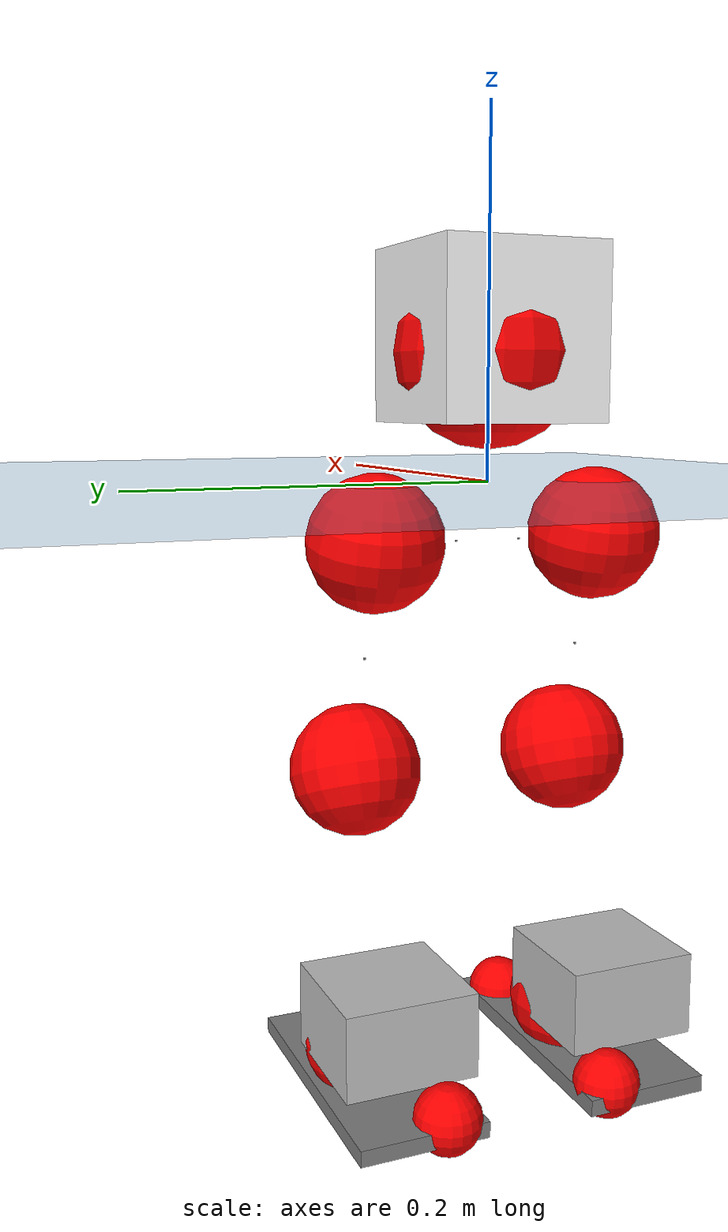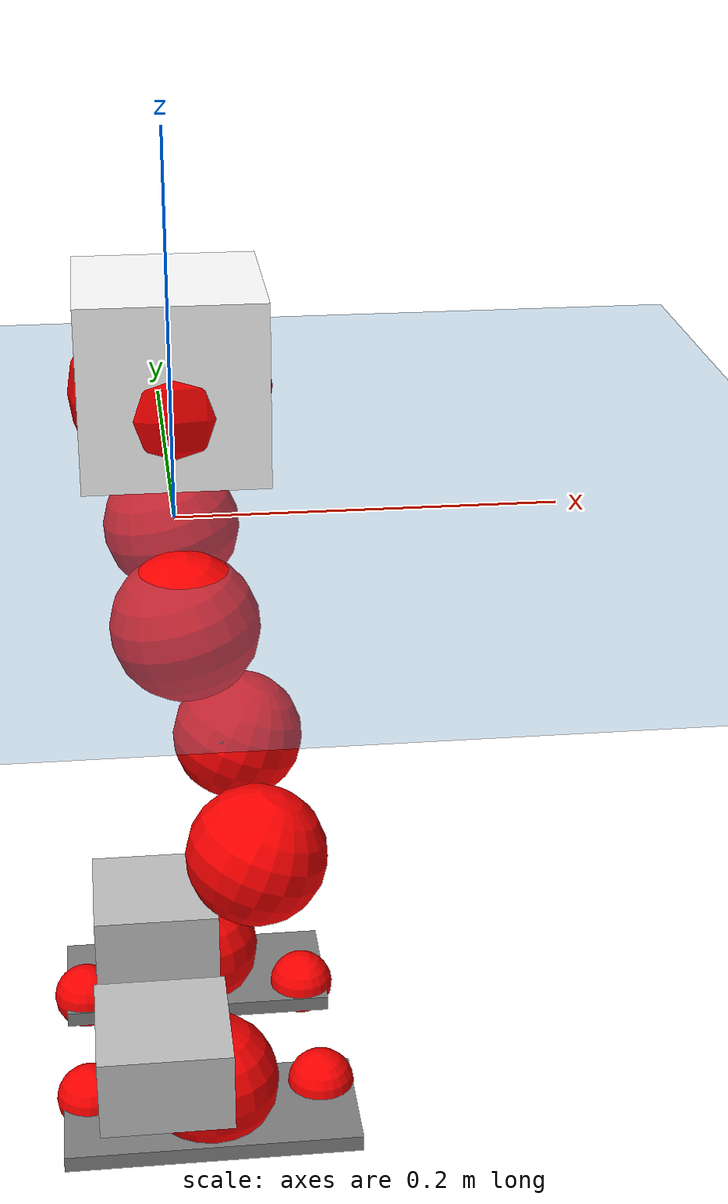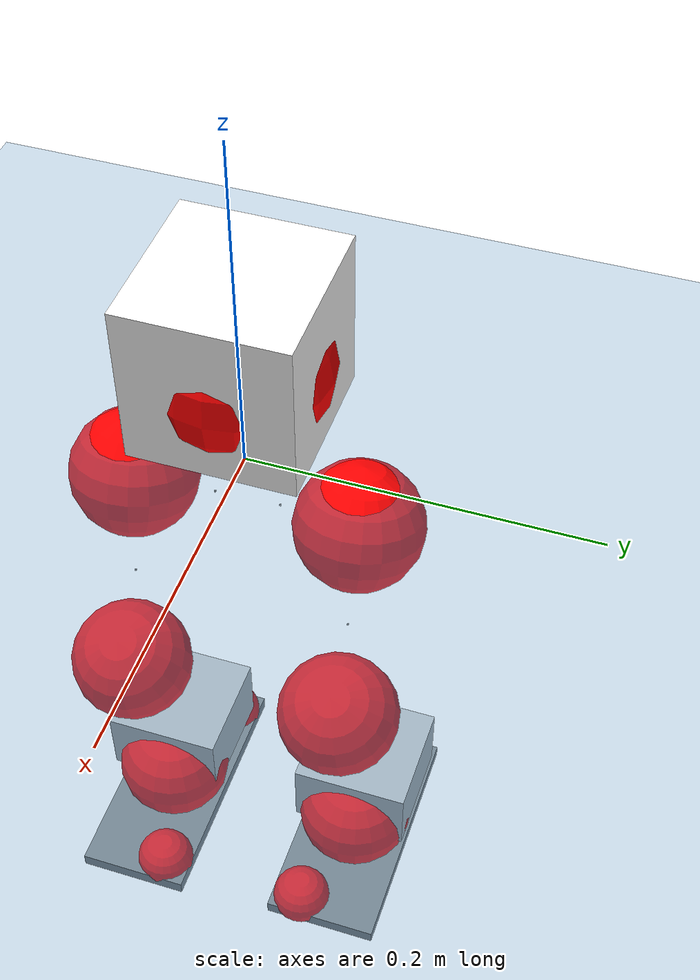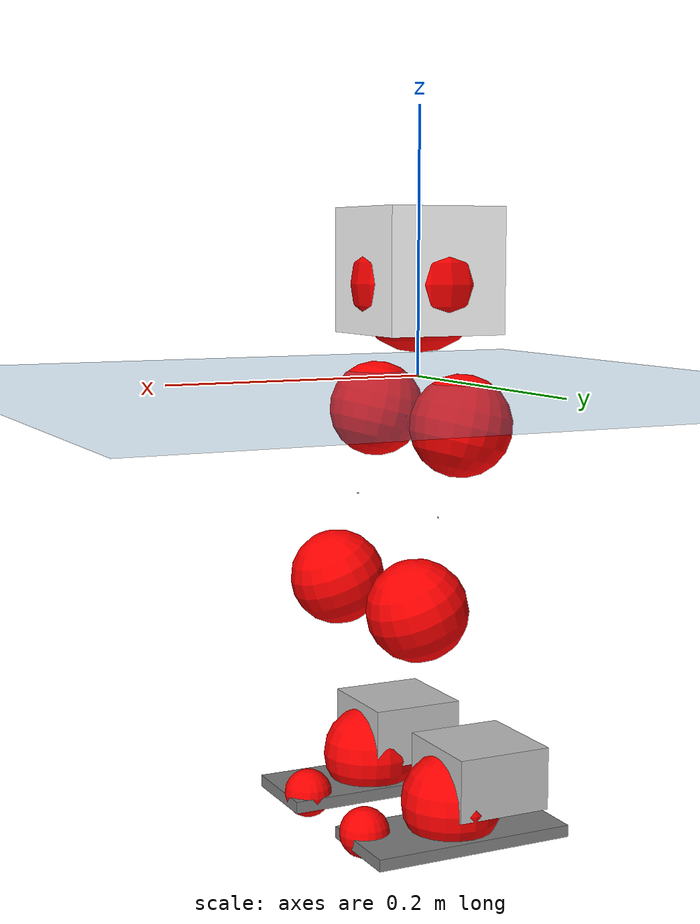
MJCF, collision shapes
<mujoco model="pi_12dof_release_v1">
  <compiler angle="radian" assetdir="assets" balanceinertia="true" inertiafromgeom="false"/>

  <option timestep="0.005" density="1.2" viscosity="2e-05"/>

  <size nkey="1"/>

  <visual>
    <quality shadowsize="8192"/>
    <map shadowclip="0.5"/>
  </visual>

  <default>
    <default class="/">
      <joint armature="0.01" damping="0.01" frictionloss="0.01"/>
      <geom contype="0" conaffinity="0" group="1" solref="-1000 -80"/>
      <site size="0.01 0.005 0.005" group="5"/>
      <general forcelimited="true" biastype="affine" gainprm="20" biasprm="0 -20 -0.5"/>
      <default class="foot">
        <geom size="0.0845 0.036 0.005" type="box" condim="6" group="4" priority="1" friction="0.9 0.2 0.2" solimp="0.015 1 0.005"/>
      </default>
      <default class="reward_collision_sphere">
        <geom group="5" rgba="1 0 0 1"/>
      </default>
    </default>
  </default>

  <asset>
    <texture type="skybox" colorspace="auto" name="//unnamed_texture_0" builtin="gradient" rgb1="0.95 0.95 0.95" rgb2="0.95 0.95 0.95" width="100" height="600"/>
    <texture type="2d" colorspace="auto" name="texplane" builtin="checker" rgb1="0.345 0.575 0.748" rgb2="0.345 0.575 0.748" markrgb="1 1 1" width="512" height="512"/>
    <material name="MatPlane" class="/" texture="texplane" texuniform="true" texrepeat="2 2" specular="0.9"/>
    <mesh name="baselink_1" class="/" file="baselink_1.STL"/>
    <mesh name="r_hip_pitch_link" class="/" file="r_hip_pitch_link.STL"/>
    <mesh name="r_hip_roll_link" class="/" file="r_hip_roll_link.STL"/>
    <mesh name="r_thigh_link" class="/" file="r_thigh_link.STL"/>
    <mesh name="r_calf_link" class="/" file="r_calf_link.STL"/>
    <mesh name="r_ankle_pitch_link" class="/" file="r_ankle_pitch_link.STL"/>
    <mesh name="r_ankle_roll_link" class="/" file="r_ankle_roll_link.STL"/>
    <mesh name="l_hip_pitch_link" class="/" file="l_hip_pitch_link.STL"/>
    <mesh name="l_hip_roll_link" class="/" file="l_hip_roll_link.STL"/>
    <mesh name="l_thigh_link" class="/" file="l_thigh_link.STL"/>
    <mesh name="l_calf_link" class="/" file="l_calf_link.STL"/>
    <mesh name="l_ankle_pitch_link" class="/" file="l_ankle_pitch_link.STL"/>
    <mesh name="l_ankle_roll_link" class="/" file="l_ankle_roll_link.STL"/>
  </asset>

  <worldbody>
    <geom name="floor" class="/" size="100 100 0.125" type="plane" group="0" material="MatPlane"/>
    <light name="toplight_shadow" class="/" pos="0 0 5" dir="0.0990148 0.0990148 -0.990148" type="directional" ambient="0.04 0.04 0.04" diffuse="0.55 0.55 0.55" specular="0.12 0.12 0.12"/>
    <light name="toplight_fill" class="/" pos="0 0 5" dir="0.0990148 0.0990148 -0.990148" type="directional" castshadow="false" ambient="0.04 0.04 0.04" diffuse="0.3 0.3 0.3" specular="0.08 0.08 0.08"/>
    <body name="trunk" pos="0.000155795 0.000155115 0.000520647" quat="1 -0.00015532 -8.56875e-05 -2.74998e-05">
      <inertial pos="0.0022838 -0.00154571 0.0385933" quat="0.694251 0.0101415 0.0116484 0.719568" mass="1.74884" diaginertia="0.00807423 0.00433386 0.00377527"/>
      <joint name="//unnamed_joint_0" type="free"/>
      <geom name="//unnamed_geom_1" class="/" type="mesh" density="0" rgba="1 1 1 1" mesh="baselink_1"/>
      <geom name="//unnamed_geom_2" class="/" size="0.0467637 0.0467637 0.0467637" pos="0 0 0.0783936" type="box" rgba="1 1 1 1"/>
      <geom name="//unnamed_geom_3" class="reward_collision_sphere" size="0.0514401" pos="0 0 0.0685944"/>
      <site name="imu" class="/" pos="-0.0070758 -0.00249836 0.00280135" size="0.00935274"/>
      <camera name="track" class="/" pos="0 -1.7254 0" quat="0.707107 0.707107 0 0" mode="trackcom"/>
      <camera name="ego_camera" class="/" pos="0.0722404 0 0.176386" quat="-0.5 -0.5 0.5 0.5"/>
      <body name="r_hip_pitch_link" pos="0.000285531 -0.0194262 -0.0321872" quat="0.992157 4.47324e-05 -0.124994 8.32566e-05">
        <inertial pos="0.00176836 -0.0473924 0.000264163" quat="-0.0190144 0.705922 -0.0240339 0.707626" mass="0.300913" diaginertia="8.92784e-05 4.69925e-05 7.4966e-05"/>
        <joint name="r_hip_pitch_joint" class="/" pos="0 0 0" axis="-0.00285027 -0.999996 -0.000519446" stiffness="0.00247247" range="-1.75073 1.22995" armature="0.00969135" damping="0.00170635" frictionloss="0.00960688"/>
        <geom name="//unnamed_geom_4" class="/" type="mesh" density="0" rgba="0.75294 0.75294 0.75294 1" mesh="r_hip_pitch_link"/>
        <geom name="//unnamed_geom_5" class="/" size="0.000467637 0.000467637 0.000467637" type="box" rgba="0.75294 0.75294 0.75294 1"/>
        <body name="r_hip_roll_link" pos="0.00112291 -0.048176 0.00110531" quat="1 -4.27665e-05 7.40292e-05 6.50727e-05">
          <inertial pos="-0.00216781 -0.000171763 -0.0597759" quat="0.706162 -0.0789325 -0.082198 0.698819" mass="0.314132" diaginertia="0.000273893 0.000132782 0.000115163"/>
          <joint name="r_hip_roll_joint" class="/" pos="0 0 0" axis="-0.999977 -0.00660147 -0.00181147" range="-0.133965 0.487044" armature="0.00977628" damping="0.00756073" frictionloss="0.00919952"/>
          <geom name="//unnamed_geom_6" class="/" type="mesh" density="0" rgba="0.75294 0.75294 0.75294 1" mesh="r_hip_roll_link"/>
          <geom name="//unnamed_geom_7" class="/" size="0.000467637 0.000467637 0.000467637" type="box" rgba="0.75294 0.75294 0.75294 1"/>
          <geom name="//unnamed_geom_8" class="reward_collision_sphere" size="0.037411"/>
          <body name="r_thigh_link" pos="-0.000535729 0.000652659 -0.0686812" quat="1 0.000102797 9.20518e-05 5.73238e-05">
            <inertial pos="9.79764e-05 0.000977419 -0.0466615" quat="0.737335 0.675527 0.000134676 -0.000100085" mass="0.0936654" diaginertia="0.000104846 4.52207e-05 5.2748e-05"/>
            <joint name="r_thigh_joint" class="/" pos="0 0 0" axis="0.0011987 -0.000220569 -0.999999" range="-0.313701 0.589505" armature="0.00944759" damping="0.00413181" frictionloss="0.00959499"/>
            <geom name="//unnamed_geom_9" class="/" type="mesh" density="0" rgba="0.75294 0.75294 0.75294 1" mesh="r_thigh_link"/>
            <geom name="//unnamed_geom_10" class="/" size="0.000467637 0.000467637 0.000467637" type="box" rgba="0.75294 0.75294 0.75294 1"/>
            <body name="r_calf_link" pos="-8.29527e-05 -0.00210433 -0.0684352" quat="0.947701 -5.32037e-05 0.31916 0.000141777">
              <inertial pos="6.88013e-05 -0.000616193 -0.0686337" quat="0.999984 -0.00306659 9.41095e-06 0.00475683" mass="0.658365" diaginertia="0.00292294 0.00163694 0.000156343"/>
              <joint name="r_calf_joint" class="/" pos="0 0 0" axis="-0.00305316 -0.999991 -0.0030433" range="-1.65237 0.628855" armature="0.00965377" damping="0.0045447" frictionloss="0.00980126"/>
              <geom name="//unnamed_geom_11" class="/" type="mesh" density="0" rgba="0.75294 0.75294 0.75294 1" mesh="r_calf_link"/>
              <geom name="//unnamed_geom_12" class="/" size="0.000467637 0.000467637 0.000467637" type="box" rgba="0.75294 0.75294 0.75294 1"/>
              <geom name="//unnamed_geom_13" class="reward_collision_sphere" size="0.037411"/>
              <body name="r_ankle_pitch_link" pos="0.000725267 0.00240408 -0.136663" quat="0.980066 2.55644e-06 -0.198672 -8.99447e-06">
                <inertial pos="0.0047288 0.00360349 -0.000487693" quat="0.00393477 0.707939 -0.00198519 0.706259" mass="0.142418" diaginertia="0.000256264 0.00010522 0.000107216"/>
                <joint name="r_ankle_pitch_joint" class="/" pos="0 0 0" axis="-0.00125842 -0.999997 -0.00216365" range="-1.29956 0.509205" armature="0.00916216" damping="0.00131151" frictionloss="0.00932206"/>
                <geom name="//unnamed_geom_14" class="/" type="mesh" density="0" rgba="0.75294 0.75294 0.75294 1" mesh="r_ankle_pitch_link"/>
                <geom name="//unnamed_geom_15" class="/" size="0.0364757 0.037411 0.0233819" type="box" rgba="0.75294 0.75294 0.75294 1"/>
                <body name="r_ankle_roll_link" pos="0.0740805 0.00238856 -0.000499479" quat="1 -0.00010478 -7.41987e-05 -1.26769e-05">
                  <inertial pos="-0.0232608 0.000321047 -0.0134803" quat="0.558221 0.434119 0.431993 0.559743" mass="0.421668" diaginertia="0.000923097 0.00049274 0.000255288"/>
                  <joint name="r_ankle_roll_joint" class="/" pos="0 0 0" axis="-1 -0.000508754 1.02154e-05" range="-0.139646 0.134136" armature="0.00896924" damping="0.000129102" frictionloss="0.00953982"/>
                  <geom name="//unnamed_geom_16" class="/" type="mesh" density="0" rgba="0.75294 0.75294 0.75294 1" mesh="r_ankle_roll_link"/>
                  <geom name="//unnamed_geom_17" class="/" type="mesh" rgba="0.75294 0.75294 0.75294 1" mesh="r_ankle_roll_link"/>
                  <geom name="right_foot" class="foot" size="0.081476 0.0353177 0.00463154" pos="-0.0491234 0 -0.0431165"/>
                  <geom name="//unnamed_geom_19" class="reward_collision_sphere" size="0.037411" pos="-0.0481602 0 -0.0195984"/>
                  <geom name="//unnamed_geom_20" class="reward_collision_sphere" size="0.0187055" pos="0.0144481 0.017254 -0.0391968"/>
                  <geom name="//unnamed_geom_21" class="reward_collision_sphere" size="0.0187055" pos="-0.115585 0.017254 -0.0391968"/>
                  <site name="right_foot" class="foot" pos="-0.0491234 0 -0.0431165" size="0.00935274"/>
                </body>
              </body>
            </body>
          </body>
        </body>
      </body>
      <body name="l_hip_pitch_link" pos="-0.000994032 0.0190151 -0.0317625" quat="0.992197 -9.73594e-06 -0.124677 2.44683e-06">
        <inertial pos="-0.000157205 0.0469603 -0.000443287" quat="-0.0392411 0.70279 0.0306414 0.709653" mass="0.316443" diaginertia="0.000106671 5.07916e-05 8.99917e-05"/>
        <joint name="l_hip_pitch_joint" class="/" pos="0 0 0" axis="-0.00406208 0.999991 0.00130995" stiffness="0.00116668" range="-1.25909 1.76067" armature="0.00987325" damping="0.00265537" frictionloss="0.00912947"/>
        <geom name="//unnamed_geom_22" class="/" type="mesh" density="0" rgba="0.75294 0.75294 0.75294 1" mesh="l_hip_pitch_link"/>
        <geom name="//unnamed_geom_23" class="/" size="0.000467637 0.000467637 0.000467637" type="box" rgba="0.75294 0.75294 0.75294 1"/>
        <body name="l_hip_roll_link" pos="0.00139535 0.0466561 -4.9165e-05" quat="1 -1.41585e-07 -9.19087e-07 2.6878e-06">
          <inertial pos="-0.00153537 -9.35124e-06 -0.060503" quat="0.699346 -0.0752094 -0.0778111 0.706543" mass="0.318193" diaginertia="0.000276067 0.000134136 0.000115813"/>
          <joint name="l_hip_roll_joint" class="/" pos="0 0 0" axis="-0.999969 -0.00763534 -0.0017808" stiffness="0.00121081" range="-0.473398 0.10028" armature="0.00956687" damping="0.0106519" frictionloss="0.00909048"/>
          <geom name="//unnamed_geom_24" class="/" type="mesh" density="0" rgba="0.75294 0.75294 0.75294 1" mesh="l_hip_roll_link"/>
          <geom name="//unnamed_geom_25" class="/" size="0.000467637 0.000467637 0.000467637" type="box" rgba="0.75294 0.75294 0.75294 1"/>
          <geom name="//unnamed_geom_26" class="reward_collision_sphere" size="0.037411"/>
          <body name="l_thigh_link" pos="0.00107158 -0.000557275 -0.0676877" quat="1 -0.000137299 -0.000278463 0.000250454">
            <inertial pos="0.000332332 -0.00155879 -0.0466354" quat="0.676533 0.736366 -0.00788406 -0.00256723" mass="0.0924149" diaginertia="0.00010373 4.55941e-05 5.15167e-05"/>
            <joint name="l_thigh_joint" class="/" pos="0 0 0" axis="0.00293187 -0.00314486 -0.999991" range="-0.584444 0.28028" armature="0.00885188" damping="0" frictionloss="0.00899636"/>
            <geom name="//unnamed_geom_27" class="/" type="mesh" density="0" rgba="0.75294 0.75294 0.75294 1" mesh="l_thigh_link"/>
            <geom name="//unnamed_geom_28" class="/" size="0.000467637 0.000467637 0.000467637" type="box" rgba="0.75294 0.75294 0.75294 1"/>
            <body name="l_calf_link" pos="-0.000854366 -0.00046728 -0.0687034" quat="0.947652 7.91843e-08 0.319305 2.65347e-06">
              <inertial pos="-0.000653681 0.00277425 -0.0687377" quat="0.999984 0.00312797 0.000244698 0.00465941" mass="0.673208" diaginertia="0.00296226 0.0016942 0.000157184"/>
              <joint name="l_calf_joint" class="/" pos="0 0 0" axis="0.0011234 0.999999 -2.3355e-05" stiffness="0.00347353" range="-0.662118 1.61885" armature="0.00915449" damping="0.00752263" frictionloss="0.00906448"/>
              <geom name="//unnamed_geom_29" class="/" type="mesh" density="0" rgba="0.75294 0.75294 0.75294 1" mesh="l_calf_link"/>
              <geom name="//unnamed_geom_30" class="/" size="0.000467637 0.000467637 0.000467637" type="box" rgba="0.75294 0.75294 0.75294 1"/>
              <geom name="//unnamed_geom_31" class="reward_collision_sphere" size="0.037411"/>
              <body name="l_ankle_pitch_link" pos="0.00139392 0.00197297 -0.136339" quat="0.98005 -1.18533e-05 -0.198749 -9.32214e-05">
                <inertial pos="0.00436259 -0.000860083 0.000354117" quat="-0.00234975 0.707047 0.00224132 0.707159" mass="0.138844" diaginertia="0.000248876 0.00010345 0.000106494"/>
                <joint name="l_ankle_pitch_joint" class="/" pos="0 0 0" axis="-0.000414511 0.999999 -0.00111504" range="-0.505116 1.30328" armature="0.00940326" damping="0.00339314" frictionloss="0.0101624"/>
                <geom name="//unnamed_geom_32" class="/" type="mesh" density="0" rgba="0.75294 0.75294 0.75294 1" mesh="l_ankle_pitch_link"/>
                <geom name="//unnamed_geom_33" class="/" size="0.0364757 0.037411 0.0233819" type="box" rgba="0.75294 0.75294 0.75294 1"/>
                <body name="l_ankle_roll_link" pos="0.0720594 0.000750219 -5.15788e-05" quat="1 0.000471467 0.00019528 8.16288e-05">
                  <inertial pos="-0.0226533 -0.000467132 -0.0144938" quat="0.558853 0.431475 0.434428 0.559272" mass="0.426607" diaginertia="0.000949331 0.000494016 0.000254998"/>
                  <joint name="l_ankle_roll_joint" class="/" pos="0 0 0" axis="-1 -8.39525e-05 0.000656948" range="-0.149651 0.151971" armature="0.00952889" damping="0.00920578" frictionloss="0.00879554"/>
                  <geom name="//unnamed_geom_34" class="/" type="mesh" density="0" rgba="0.75294 0.75294 0.75294 1" mesh="l_ankle_roll_link"/>
                  <geom name="//unnamed_geom_35" class="/" type="mesh" rgba="0.75294 0.75294 0.75294 1" mesh="l_ankle_roll_link"/>
                  <geom name="left_foot" class="foot" size="0.0780136 0.0361789 0.00443944" pos="-0.0491234 0 -0.0431165"/>
                  <geom name="//unnamed_geom_37" class="reward_collision_sphere" size="0.037411" pos="-0.0481602 0 -0.0195984"/>
                  <geom name="//unnamed_geom_38" class="reward_collision_sphere" size="0.0187055" pos="0.0144481 -0.017254 -0.0391968"/>
                  <geom name="//unnamed_geom_39" class="reward_collision_sphere" size="0.0187055" pos="-0.115585 -0.017254 -0.0391968"/>
                  <site name="left_foot" class="foot" pos="-0.0491234 0 -0.0431165" size="0.00935274"/>
                </body>
              </body>
            </body>
          </body>
        </body>
      </body>
    </body>
  </worldbody>

  <contact>
    <pair class="/" geom1="floor" geom2="right_foot" name="//unnamed_contact_1"/>
    <pair class="/" geom1="floor" geom2="left_foot" name="//unnamed_contact_0"/>
  </contact>

  <actuator>
    <general name="r_hip_pitch_joint" class="/" joint="r_hip_pitch_joint" forcerange="-19.221 19.221" gainprm="18.5799" biasprm="0 -18.5799 -0.481153"/>
    <general name="r_hip_roll_joint" class="/" joint="r_hip_roll_joint" forcerange="-19.4949 19.4949" gainprm="18.5799" biasprm="0 -18.5799 -0.481153"/>
    <general name="r_thigh_joint" class="/" joint="r_thigh_joint" forcerange="-19.5211 19.5211" gainprm="18.5799" biasprm="0 -18.5799 -0.481153"/>
    <general name="r_calf_joint" class="/" joint="r_calf_joint" forcerange="-19.7908 19.7908" gainprm="18.5799" biasprm="0 -18.5799 -0.481153"/>
    <general name="r_ankle_pitch_joint" class="/" joint="r_ankle_pitch_joint" forcerange="-19.4904 19.4904" gainprm="18.5799" biasprm="0 -18.5799 -0.481153"/>
    <general name="r_ankle_roll_joint" class="/" joint="r_ankle_roll_joint" forcerange="-19.7098 19.7098" gainprm="18.5799" biasprm="0 -18.5799 -0.481153"/>
    <general name="l_hip_pitch_joint" class="/" joint="l_hip_pitch_joint" forcerange="-19.3046 19.3046" gainprm="18.5799" biasprm="0 -18.5799 -0.481153"/>
    <general name="l_hip_roll_joint" class="/" joint="l_hip_roll_joint" forcerange="-20.3202 20.3202" gainprm="18.5799" biasprm="0 -18.5799 -0.481153"/>
    <general name="l_thigh_joint" class="/" joint="l_thigh_joint" forcerange="-19.5579 19.5579" gainprm="18.5799" biasprm="0 -18.5799 -0.481153"/>
    <general name="l_calf_joint" class="/" joint="l_calf_joint" forcerange="-20.2204 20.2204" gainprm="18.5799" biasprm="0 -18.5799 -0.481153"/>
    <general name="l_ankle_pitch_joint" class="/" joint="l_ankle_pitch_joint" forcerange="-18.9532 18.9532" gainprm="18.5799" biasprm="0 -18.5799 -0.481153"/>
    <general name="l_ankle_roll_joint" class="/" joint="l_ankle_roll_joint" forcerange="-19.26 19.26" gainprm="18.5799" biasprm="0 -18.5799 -0.481153"/>
  </actuator>

  <sensor>
    <gyro site="imu" name="imu_angular_velocity"/>
    <velocimeter site="imu" name="imu_linear_velocity"/>
    <framelinvel objtype="site" objname="left_foot" name="left_foot_global_linear_velocity"/>
    <framelinvel objtype="site" objname="right_foot" name="right_foot_global_linear_velocity"/>
  </sensor>

  <keyframe>
    <key name="home" qpos="0 0 0.291 1 0 0 0 0.4 0 0 -0.8 0.4 0 -0.4 0 0 0.8 -0.4 0"/>
  </keyframe>
</mujoco>
